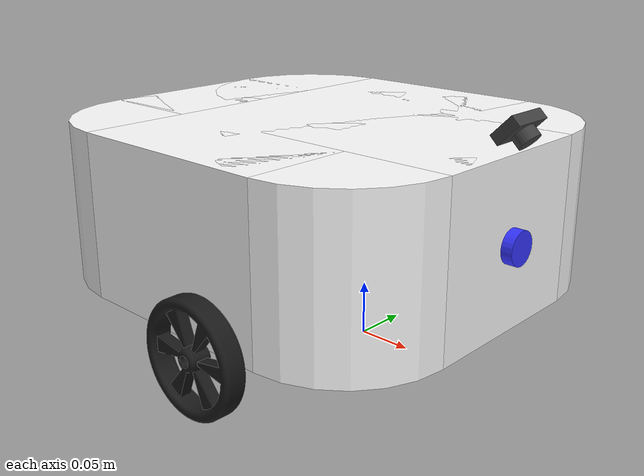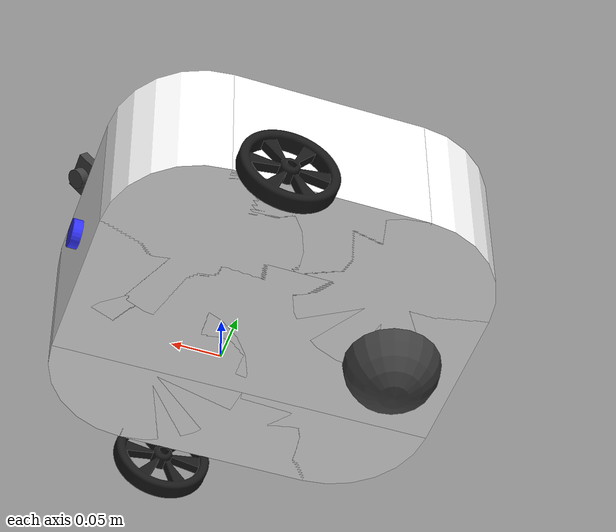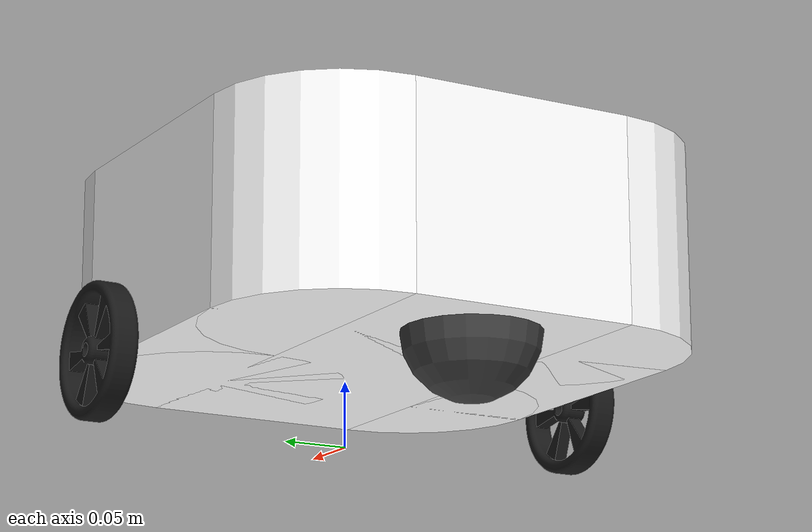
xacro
<?xml version="1.0"?>
<robot xmlns:xacro="http://www.ros.org/wiki/xacro"  name="mobo_bot">

    <xacro:include filename="$(find mobo_bot_description)/urdf/color_materials.xacro"/>
    <xacro:include filename="$(find mobo_bot_description)/urdf/part_macros.xacro"/>
    <xacro:include filename="$(find mobo_bot_description)/urdf/inertia_macros.xacro"/>

    <xacro:property name="gazebo_visual" value="true"/>
    <xacro:property name="use_ros2_control" value="false"/>

    <xacro:property name="base_chassis_height" value="0.15"/>

    <xacro:arg name="laser_visual" default="false"/>
    <xacro:arg name="imu_visual"   default="true"/>
    <xacro:arg name="sonar_visual"   default="false"/>
    <xacro:arg name="cam_visual"   default="false"/>

     <!-- GAZEBO WHEEL PARAMETERS -->
    <xacro:macro name="gazebo_wheel_settings" params="name">
        <gazebo reference="${name}">
            <mu1>1.0</mu1>
            <mu2>1.0</mu2>
            <minDepth>0.01</minDepth>
            <material>Gazebo/FlatBlack</material>
        </gazebo>
    </xacro:macro>

    <!-- BASE LINK -->

    <link name="base_link">
    </link>

    <joint name="base_footprint_joint" type="fixed">
        <parent link="base_link"/>
        <child link="base_footprint"/>
        <origin xyz="0 0 0" rpy="0 0 0"/>
    </joint>

    <link name="base_footprint">
    </link>

    <!-- CHASSIS LINK -->

    <joint name="base_chassis_joint" type="fixed">
        <parent link="base_link"/>
        <child link="base_chassis_link"/>
        <origin xyz="0 0 0.05"/>
    </joint>

    <link name="base_chassis_link">
        <xacro:box_with_fillet x="-0.05" y="0" z="${base_chassis_height/2}" size_x="0.4" size_y="0.37" size_z="${base_chassis_height}" fillet_radius="0.1" material="white"/>
        <collision>
           <origin xyz="-0.05 0 ${base_chassis_height/2}" rpy="0 0 0"/>
            <geometry>
                <box size="0.4 0.37 ${base_chassis_height}"/>
            </geometry>
        </collision>
        <xacro:inertial_box mass="5.0" x="0.4" y="0.37" z="${base_chassis_height}">
            <origin xyz="-0.05 0 ${base_chassis_height/2}" rpy="0 0 0"/>
        </xacro:inertial_box>
    </link>
    <gazebo reference="base_chassis_link">
        <material>Gazebo/White</material>
    </gazebo>

    <!--  FRONT LEFT WHEEL LINK -->

    <joint name="left_wheel_joint" type="continuous">
        <parent link="base_chassis_link"/>
        <child link="left_wheel_link"/>
        <origin xyz="0 0.2 0" rpy="${-pi/2} 0 0"/>
        <axis xyz="0 0 1"/>
    </joint>

    <link name="left_wheel_link">
        <xacro:insert_mesh_drive_wheel/>
    </link>

    <xacro:gazebo_wheel_settings name="left_wheel_link"/>

    <!--  FRONT RIGHT WHEEL LINK -->

    <joint name="right_wheel_joint" type="continuous">
        <parent link="base_chassis_link"/>
        <child link="right_wheel_link"/>
        <origin xyz="0 -0.2 0" rpy="${-pi/2} 0 0"/>
        <axis xyz="0 0 1"/>
    </joint>

    <link name="right_wheel_link">
        <xacro:insert_mesh_drive_wheel/>
    </link>

    <xacro:gazebo_wheel_settings name="right_wheel_link"/>

    <!--  CASTER WHEEL LINK -->

    <joint name="caster_wheel_joint" type="fixed">
        <parent link="base_chassis_link"/>
        <child link="caster_wheel_link"/>
        <origin xyz="-0.18 0 0"/>
    </joint>

    <link name="caster_wheel_link">
        <visual>
            <origin xyz="0 0 0" rpy="0 0 0"/>
            <geometry>
                <sphere radius="0.05" />
            </geometry>
            <material name="grey"/>
        </visual>
        <collision>
           <origin xyz="0 0 0" rpy="0 0 0"/>
            <geometry>
                <sphere radius="0.05" />
            </geometry>
        </collision>
        <xacro:inertial_sphere mass="0.5" radius="0.05">
            <origin xyz="0 0 0" rpy="0 0 0"/>
        </xacro:inertial_sphere>
    </link>

    <gazebo reference="caster_wheel_link">
        <mu1>0.001</mu1>
        <mu2>0.001</mu2>
        <minDepth>0.01</minDepth>
        <material>Gazebo/Grey</material>
    </gazebo>

    <xacro:include filename="$(find mobo_bot_description)/urdf/ros_controllers.xacro"/>

    <xacro:include filename="$(find mobo_bot_description)/urdf/sensors/imu.xacro"/>
    <xacro:include filename="$(find mobo_bot_description)/urdf/sensors/lidar.xacro"/>
    <xacro:include filename="$(find mobo_bot_description)/urdf/sensors/cam.xacro"/>
    <xacro:include filename="$(find mobo_bot_description)/urdf/sensors/sonar.xacro"/>

</robot>

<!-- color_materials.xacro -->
<robot name="mobo_bot" xmlns:xacro="http://www.ros.org/wiki/xacro" >

    <material name="white">
        <color rgba="1 1 1 1" />
    </material>

    <material name="grey">
        <color rgba="0.25 0.25 0.25 1"/>
    </material>

    <material name="orange">
        <color rgba="1 0.55 0 1"/>
    </material>

    <material name="blue">
        <color rgba="0.2 0.2 1 1"/>
    </material>

    <material name="red">
        <color rgba="1 0 0 1"/>
    </material>

    <material name="black">
        <color rgba="0.1 0.1 0.1 1"/>
    </material>

    <material name="silver">
        <color rgba="0.6 0.6 0.6 1"/>
    </material>

</robot>

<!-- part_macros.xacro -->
<robot name="mobo_bot" xmlns:xacro="http://www.ros.org/wiki/xacro" >

    <xacro:macro name="box_with_fillet" params="x y z size_x size_y size_z fillet_radius material">
            <!-- logitudinal box -->
            <visual>
                <origin xyz="${x} ${y} ${z}" rpy="0 0 0"/>
                <geometry>
                    <box size="${size_x} ${size_y-(2*fillet_radius)} ${size_z}"/>
                </geometry>
                <material name="${material}"/>
            </visual>
            <!-- lateral box -->
            <visual>
                <origin xyz="${x} ${y} ${z}" rpy="0 0 0"/>
                <geometry>
                    <box size="${size_x-(2*fillet_radius)} ${size_y} ${size_z}"/>
                </geometry>
                <material name="${material}"/>
            </visual>
            <!-- cylinder1 -->
            <visual>
                <origin xyz="${x+((size_x/2)-fillet_radius)} ${y+((size_y/2)-fillet_radius)} ${z}" rpy="0 0 0"/>
                <geometry>
                    <cylinder length="${size_z}" radius="${fillet_radius}"/>
                </geometry>
                <material name="${material}"/>
            </visual>
            <!-- cylinder2 -->
            <visual>
                <origin xyz="${x+((size_x/2)-fillet_radius)} ${y-((size_y/2)-fillet_radius)} ${z}" rpy="0 0 0"/>
                <geometry>
                    <cylinder length="${size_z}" radius="${fillet_radius}"/>
                </geometry>
                <material name="${material}"/>
            </visual>
            <!-- cylinder3 -->
            <visual>
                <origin xyz="${x-((size_x/2)-fillet_radius)} ${y+((size_y/2)-fillet_radius)} ${z}" rpy="0 0 0"/>
                <geometry>
                    <cylinder length="${size_z}" radius="${fillet_radius}"/>
                </geometry>
                <material name="${material}"/>
            </visual>
            <!-- cylinder4 -->
            <visual>
                <origin xyz="${x-((size_x/2)-fillet_radius)} ${y-((size_y/2)-fillet_radius)} ${z}" rpy="0 0 0"/>
                <geometry>
                    <cylinder length="${size_z}" radius="${fillet_radius}"/>
                </geometry>
                <material name="${material}"/>
            </visual>
    </xacro:macro>

    <xacro:macro name="insert_mesh_drive_wheel">
        <visual>
            <origin xyz="0 0 0" rpy="0 0 0"/>
            <geometry>
                <xacro:unless value="${gazebo_visual}">
                    <mesh filename="package://mobo_bot_description/meshes/wheel.stl"/>
                </xacro:unless>
                <xacro:if value="${gazebo_visual}">
                    <mesh filename="$(find mobo_bot_description)/meshes/wheel.stl"/>
                </xacro:if>
            </geometry>
            <material name="black"/>
        </visual>
        <collision>
            <origin xyz="0 0 0" rpy="0 0 0"/>
            <geometry>
                <cylinder radius="0.05" length="0.02"/>
            </geometry>
        </collision>

        <xacro:inertial_cylinder mass="0.4" length="0.02" radius="0.05">
            <origin xyz="0 0 0" rpy="0 0 0"/>
        </xacro:inertial_cylinder>
    </xacro:macro>

    <xacro:property name="wheel_radius" value="0.05"/>
    <xacro:property name="wheel_width" value="0.04"/>
    <xacro:property name="wheel_mass" value="0.5"/>
    <xacro:property name="wheel_color" value="black"/>
    <xacro:property name="rim_color" value="red"/>

   <xacro:macro name="insert_drive_wheel">
        <visual>
            <origin xyz="0 0 0" rpy="0 0 0"/>
            <geometry>
                <cylinder radius="${wheel_radius}" length="${wheel_width}"/>
            </geometry>
            <material name="${wheel_color}"/>
        </visual>
        <collision>
           <origin xyz="0 0 0" rpy="0 0 0"/>
            <geometry>
                <cylinder radius="${wheel_radius}" length="${wheel_width}"/>
            </geometry>
        </collision>
        <xacro:inertial_cylinder mass="${wheel_mass}" length="${wheel_width}" radius="${wheel_radius}">
            <origin xyz="0 0 0" rpy="0 0 0"/>
        </xacro:inertial_cylinder>
    </xacro:macro>

    <xacro:macro name="insert_wheel_rim">
        <visual>
            <origin xyz="0 0 0" rpy="0 0 0"/>
            <geometry>
                <box size="0.01 ${wheel_radius*1.2} ${wheel_width+0.005}"/>
            </geometry>
            <material name="${rim_color}"/>
        </visual>
        <visual>
            <origin xyz="0 0 0" rpy="0 0 ${pi/2}"/>
            <geometry>
                <box size="0.01 ${wheel_radius*1.2} ${wheel_width+0.005}"/>
            </geometry>
            <material name="${rim_color}"/>
        </visual>
        <visual>
            <origin xyz="0 0 0" rpy="0 0 ${-pi/4}"/>
            <geometry>
                <box size="0.01 ${wheel_radius*1.2} ${wheel_width+0.005}"/>
            </geometry>
            <material name="${rim_color}"/>
        </visual>
        <visual>
            <origin xyz="0 0 0" rpy="0 0 ${pi/4}"/>
            <geometry>
                <box size="0.01 ${wheel_radius*1.2} ${wheel_width+0.005}"/>
            </geometry>
            <material name="${rim_color}"/>
        </visual>
    </xacro:macro>

</robot>

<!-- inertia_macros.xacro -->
<robot xmlns:xacro="http://www.ros.org/wiki/xacro" >

    <xacro:macro name="inertial_sphere" params="mass radius *origin">
        <inertial>
            <xacro:insert_block name="origin"/>
            <mass value="${mass}" />
            <inertia ixx="${(2/5) * mass * (radius*radius)}" ixy="0.0" ixz="0.0"
                    iyy="${(2/5) * mass * (radius*radius)}" iyz="0.0"
                    izz="${(2/5) * mass * (radius*radius)}" />
        </inertial>
    </xacro:macro>

    <xacro:macro name="inertial_box" params="mass x y z *origin">
        <inertial>
            <xacro:insert_block name="origin"/>
            <mass value="${mass}" />
            <inertia ixx="${(1/12) * mass * (y*y+z*z)}" ixy="0.0" ixz="0.0"
                    iyy="${(1/12) * mass * (x*x+z*z)}" iyz="0.0"
                    izz="${(1/12) * mass * (x*x+y*y)}" />
        </inertial>
    </xacro:macro>

    <xacro:macro name="inertial_cylinder" params="mass length radius *origin">
        <inertial>
            <xacro:insert_block name="origin"/>
            <mass value="${mass}" />
            <inertia ixx="${(1/12) * mass * (3*radius*radius + length*length)}" ixy="0.0" ixz="0.0"
                    iyy="${(1/12) * mass * (3*radius*radius + length*length)}" iyz="0.0"
                    izz="${(1/2) * mass * (radius*radius)}" />
        </inertial>
    </xacro:macro>

</robot>

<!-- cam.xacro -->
<robot xmlns:xacro="http://www.ros.org/wiki/xacro"  name="mobo_bot">

    <xacro:property name="line_sense_angle"   value="${pi/2.5}"/>

    <xacro:property name="line_sense_mode"   value="false"/>

    <!-- CAMERA LINK FRAME -->

    <joint name="cam_joint" type="fixed">
        <parent link="base_chassis_link"/>
        <child link="cam_link"/>
        <xacro:if value="${line_sense_mode}">
            <origin xyz="0.16 0 0" rpy="0 ${line_sense_angle} 0"/>
        </xacro:if>
        <xacro:unless value="${line_sense_mode}">
            <origin xyz="0.16 0 ${base_chassis_height+0.01}" rpy="0 ${pi/4} 0"/>
        </xacro:unless>
    </joint>

    <link name="cam_link">
        <visual>
            <origin xyz="-0.005 0 0" rpy="0 ${pi/2} 0"/>
            <geometry>
                <cylinder radius="0.01" length="0.01"/>
            </geometry>
            <material name="grey"/>
        </visual>
        <visual>
            <origin xyz="-0.015 0 0" rpy="0 0 0"/>
            <geometry>
                <box size="0.01 0.04 0.025" />
            </geometry>
            <material name="grey"/>
        </visual>
        <collision>
            <origin xyz="-0.01 0 0" rpy="0 0 0"/>
            <geometry>
                <box size="0.02 0.04 0.025"/>
            </geometry>
        </collision>
        <xacro:inertial_box mass="0.0005" x="0.02" y="0.04" z="0.025">
            <origin xyz="-0.01 0 0" rpy="0 0 0"/>
        </xacro:inertial_box>

    </link>

    <joint name="cam_optical_joint" type="fixed">
        <parent link="cam_link"/>
        <child link="cam_optical_link"/>
        <origin xyz="0 0 0" rpy="${-pi/2} 0 ${-pi/2}"/>
    </joint>

    <link name="cam_optical_link"/>

    <gazebo reference="cam_link">
        <material>Gazebo/DarkGrey</material>

        <sensor type="camera" name="camera">
            <visualize>$(arg cam_visual)</visualize>
            <update_rate>15.0</update_rate>
            <camera name="cam">
                <horizontal_fov>1.4</horizontal_fov>
                <image>
                    <width>320</width>
                    <height>240</height>
                    <format>R8G8B8</format>
                </image>
                <clip>
                    <near>0.05</near>
                    <far>5</far>
                </clip>
                <noise>
                    <type>gaussian</type>
                    <mean>0.0</mean>
                    <stddev>0.007</stddev>
                </noise>
            </camera>
            <plugin name="rgb_cam_plugin" filename="libgazebo_ros_camera.so">
                <!-- Set camera name. If empty, defaults to sensor name (i.e. "sensor_name") -->
                <camera_name>cam</camera_name>
                <!-- Set TF frame name. If empty, defaults to link name (i.e. "link_name") -->
                <frame_name>cam_optical_link</frame_name>
                <hack_baseline>0.2</hack_baseline>
            </plugin>
        </sensor>
    </gazebo>

</robot>

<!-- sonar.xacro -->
<robot xmlns:xacro="http://www.ros.org/wiki/xacro"  name="mobo_bot">

    <xacro:property name="deg2rad" value="0.017460317"/>
    <xacro:property name="scan_angle" value="1"/>

  <!-- SONAR LINK FRAME -->

    <joint name="sonar_joint" type="fixed">
        <parent link="base_chassis_link"/>
        <child link="sonar_link"/>
        <origin xyz="0.16 0 ${base_chassis_height/2}" rpy="0 0 0"/>
        <axis xyz="0 0 0"/>
    </joint>

    <link name="sonar_link">
        <visual>
            <origin xyz="-0.005 0 0" rpy="0 ${pi/2} 0"/>
            <geometry>
                <cylinder radius="0.015" length="0.01" />
            </geometry>
            <material name="blue"/>
        </visual>

        <collision>
            <origin xyz="-0.005 0 0" rpy="0 ${pi/2} 0"/>
            <geometry>
                <cylinder radius="0.015" length="0.01" />
            </geometry>
        </collision>

        <xacro:inertial_cylinder mass="0.0005" length="0.01" radius="0.01">
            <origin xyz="-0.005 0 0" rpy="0 0 0"/>
        </xacro:inertial_cylinder>
    </link>

    <gazebo reference="sonar_link">
        <material>Gazebo/Blue</material>

        <sensor name="sonar" type="ray">
            <always_on>true</always_on>
            <visualize>$(arg sonar_visual)</visualize>
            <pose>0.0 0 0.0 0 0 0</pose>
            <update_rate>20</update_rate>
            <ray>
                <scan>
                    <horizontal>
                    <samples>20</samples>
                    <resolution>1</resolution>
                    <min_angle>${-scan_angle * deg2rad}</min_angle>
                    <max_angle>${scan_angle * deg2rad}</max_angle>
                    </horizontal>
                    <vertical>
                    <samples>20</samples>
                    <resolution>1</resolution>
                    <min_angle>${-scan_angle * deg2rad}</min_angle>
                    <max_angle>${scan_angle * deg2rad}</max_angle>
                    </vertical>
                </scan>
                <range>
                    <min>0.01</min>
                    <max>2</max>
                    <resolution>0.02</resolution>
                </range>
            </ray>

            <plugin name="sonar_plugin" filename="libgazebo_ros_ray_sensor.so">
                <ros>
                    <namespace>sonar</namespace>
                    <remapping>~/out:=range</remapping>
                </ros>
                <output_type>sensor_msgs/Range</output_type>
                <radiation_type>ultrasound</radiation_type>
                <frame_name>sonar_link</frame_name>
            </plugin>
        </sensor>
    </gazebo>

</robot>
